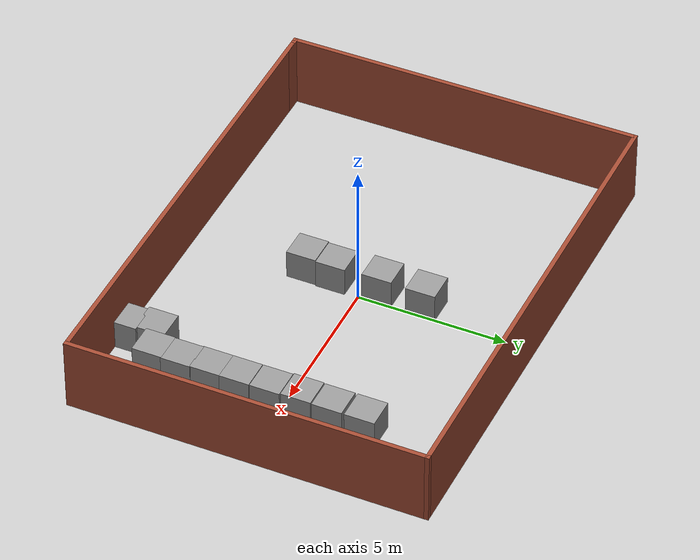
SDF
<?xml version='1.0'?>
<sdf version='1.7'>
  <model name='Untitled'>
    <link name='Wall_10'>
      <pose>-7.75 -5.925 0 0 -0 0</pose>
      <self_collide>0</self_collide>
      <enable_wind>0</enable_wind>
      <kinematic>0</kinematic>
      <visual name='Wall_10_Visual'>
        <pose>0 0 1.25 0 -0 0</pose>
        <geometry>
          <box>
            <size>0.75 0.15 2.5</size>
          </box>
        </geometry>
        <material>
          <script>
            <uri>file://media/materials/scripts/gazebo.material</uri>
            <name>Gazebo/Bricks</name>
          </script>
          <ambient>1 1 1 1</ambient>
          <shader type='pixel'/>
        </material>
        <meta>
          <layer>0</layer>
        </meta>
        <transparency>0</transparency>
        <cast_shadows>1</cast_shadows>
      </visual>
      <collision name='Wall_10_Collision'>
        <laser_retro>0</laser_retro>
        <max_contacts>10</max_contacts>
        <pose>0 0 1.25 0 -0 0</pose>
        <geometry>
          <box>
            <size>0.75 0.15 2.5</size>
          </box>
        </geometry>
        <surface>
          <friction>
            <ode>
              <mu>1</mu>
              <mu2>1</mu2>
              <fdir1>0 0 0</fdir1>
              <slip1>0</slip1>
              <slip2>0</slip2>
            </ode>
            <torsional>
              <coefficient>1</coefficient>
              <patch_radius>0</patch_radius>
              <surface_radius>0</surface_radius>
              <use_patch_radius>1</use_patch_radius>
              <ode>
                <slip>0</slip>
              </ode>
            </torsional>
          </friction>
          <bounce>
            <restitution_coefficient>0</restitution_coefficient>
            <threshold>1e+06</threshold>
          </bounce>
          <contact>
            <collide_without_contact>0</collide_without_contact>
            <collide_without_contact_bitmask>1</collide_without_contact_bitmask>
            <collide_bitmask>1</collide_bitmask>
            <ode>
              <soft_cfm>0</soft_cfm>
              <soft_erp>0.2</soft_erp>
              <kp>1e+13</kp>
              <kd>1</kd>
              <max_vel>0.01</max_vel>
              <min_depth>0</min_depth>
            </ode>
            <bullet>
              <split_impulse>1</split_impulse>
              <split_impulse_penetration_threshold>-0.01</split_impulse_penetration_threshold>
              <soft_cfm>0</soft_cfm>
              <soft_erp>0.2</soft_erp>
              <kp>1e+13</kp>
              <kd>1</kd>
            </bullet>
          </contact>
        </surface>
      </collision>
    </link>
    <link name='Wall_5'>
      <pose>0.125 -5.925 0 0 -0 0</pose>
      <self_collide>0</self_collide>
      <enable_wind>0</enable_wind>
      <kinematic>0</kinematic>
      <visual name='Wall_5_Visual'>
        <pose>0 0 1.25 0 -0 0</pose>
        <geometry>
          <box>
            <size>16 0.15 2.5</size>
          </box>
        </geometry>
        <material>
          <script>
            <uri>file://media/materials/scripts/gazebo.material</uri>
            <name>Gazebo/Bricks</name>
          </script>
          <ambient>1 1 1 1</ambient>
          <shader type='pixel'/>
        </material>
        <meta>
          <layer>0</layer>
        </meta>
        <transparency>0</transparency>
        <cast_shadows>1</cast_shadows>
      </visual>
      <collision name='Wall_5_Collision'>
        <laser_retro>0</laser_retro>
        <max_contacts>10</max_contacts>
        <pose>0 0 1.25 0 -0 0</pose>
        <geometry>
          <box>
            <size>16 0.15 2.5</size>
          </box>
        </geometry>
        <surface>
          <friction>
            <ode>
              <mu>1</mu>
              <mu2>1</mu2>
              <fdir1>0 0 0</fdir1>
              <slip1>0</slip1>
              <slip2>0</slip2>
            </ode>
            <torsional>
              <coefficient>1</coefficient>
              <patch_radius>0</patch_radius>
              <surface_radius>0</surface_radius>
              <use_patch_radius>1</use_patch_radius>
              <ode>
                <slip>0</slip>
              </ode>
            </torsional>
          </friction>
          <bounce>
            <restitution_coefficient>0</restitution_coefficient>
            <threshold>1e+06</threshold>
          </bounce>
          <contact>
            <collide_without_contact>0</collide_without_contact>
            <collide_without_contact_bitmask>1</collide_without_contact_bitmask>
            <collide_bitmask>1</collide_bitmask>
            <ode>
              <soft_cfm>0</soft_cfm>
              <soft_erp>0.2</soft_erp>
              <kp>1e+13</kp>
              <kd>1</kd>
              <max_vel>0.01</max_vel>
              <min_depth>0</min_depth>
            </ode>
            <bullet>
              <split_impulse>1</split_impulse>
              <split_impulse_penetration_threshold>-0.01</split_impulse_penetration_threshold>
              <soft_cfm>0</soft_cfm>
              <soft_erp>0.2</soft_erp>
              <kp>1e+13</kp>
              <kd>1</kd>
            </bullet>
          </contact>
        </surface>
      </collision>
    </link>
    <link name='Wall_7'>
      <pose>8.05 0 0 0 -0 1.5708</pose>
      <self_collide>0</self_collide>
      <enable_wind>0</enable_wind>
      <kinematic>0</kinematic>
      <visual name='Wall_7_Visual'>
        <pose>0 0 1.25 0 -0 0</pose>
        <geometry>
          <box>
            <size>12 0.15 2.5</size>
          </box>
        </geometry>
        <material>
          <script>
            <uri>file://media/materials/scripts/gazebo.material</uri>
            <name>Gazebo/Bricks</name>
          </script>
          <ambient>1 1 1 1</ambient>
          <shader type='pixel'/>
        </material>
        <meta>
          <layer>0</layer>
        </meta>
        <transparency>0</transparency>
        <cast_shadows>1</cast_shadows>
      </visual>
      <collision name='Wall_7_Collision'>
        <laser_retro>0</laser_retro>
        <max_contacts>10</max_contacts>
        <pose>0 0 1.25 0 -0 0</pose>
        <geometry>
          <box>
            <size>12 0.15 2.5</size>
          </box>
        </geometry>
        <surface>
          <friction>
            <ode>
              <mu>1</mu>
              <mu2>1</mu2>
              <fdir1>0 0 0</fdir1>
              <slip1>0</slip1>
              <slip2>0</slip2>
            </ode>
            <torsional>
              <coefficient>1</coefficient>
              <patch_radius>0</patch_radius>
              <surface_radius>0</surface_radius>
              <use_patch_radius>1</use_patch_radius>
              <ode>
                <slip>0</slip>
              </ode>
            </torsional>
          </friction>
          <bounce>
            <restitution_coefficient>0</restitution_coefficient>
            <threshold>1e+06</threshold>
          </bounce>
          <contact>
            <collide_without_contact>0</collide_without_contact>
            <collide_without_contact_bitmask>1</collide_without_contact_bitmask>
            <collide_bitmask>1</collide_bitmask>
            <ode>
              <soft_cfm>0</soft_cfm>
              <soft_erp>0.2</soft_erp>
              <kp>1e+13</kp>
              <kd>1</kd>
              <max_vel>0.01</max_vel>
              <min_depth>0</min_depth>
            </ode>
            <bullet>
              <split_impulse>1</split_impulse>
              <split_impulse_penetration_threshold>-0.01</split_impulse_penetration_threshold>
              <soft_cfm>0</soft_cfm>
              <soft_erp>0.2</soft_erp>
              <kp>1e+13</kp>
              <kd>1</kd>
            </bullet>
          </contact>
        </surface>
      </collision>
    </link>
    <link name='Wall_8'>
      <pose>0 5.925 0 0 -0 3.14159</pose>
      <self_collide>0</self_collide>
      <enable_wind>0</enable_wind>
      <kinematic>0</kinematic>
      <visual name='Wall_8_Visual'>
        <pose>0 0 1.25 0 -0 0</pose>
        <geometry>
          <box>
            <size>16.25 0.15 2.5</size>
          </box>
        </geometry>
        <material>
          <script>
            <uri>file://media/materials/scripts/gazebo.material</uri>
            <name>Gazebo/Bricks</name>
          </script>
          <ambient>1 1 1 1</ambient>
          <shader type='pixel'/>
        </material>
        <meta>
          <layer>0</layer>
        </meta>
        <transparency>0</transparency>
        <cast_shadows>1</cast_shadows>
      </visual>
      <collision name='Wall_8_Collision'>
        <laser_retro>0</laser_retro>
        <max_contacts>10</max_contacts>
        <pose>0 0 1.25 0 -0 0</pose>
        <geometry>
          <box>
            <size>16.25 0.15 2.5</size>
          </box>
        </geometry>
        <surface>
          <friction>
            <ode>
              <mu>1</mu>
              <mu2>1</mu2>
              <fdir1>0 0 0</fdir1>
              <slip1>0</slip1>
              <slip2>0</slip2>
            </ode>
            <torsional>
              <coefficient>1</coefficient>
              <patch_radius>0</patch_radius>
              <surface_radius>0</surface_radius>
              <use_patch_radius>1</use_patch_radius>
              <ode>
                <slip>0</slip>
              </ode>
            </torsional>
          </friction>
          <bounce>
            <restitution_coefficient>0</restitution_coefficient>
            <threshold>1e+06</threshold>
          </bounce>
          <contact>
            <collide_without_contact>0</collide_without_contact>
            <collide_without_contact_bitmask>1</collide_without_contact_bitmask>
            <collide_bitmask>1</collide_bitmask>
            <ode>
              <soft_cfm>0</soft_cfm>
              <soft_erp>0.2</soft_erp>
              <kp>1e+13</kp>
              <kd>1</kd>
              <max_vel>0.01</max_vel>
              <min_depth>0</min_depth>
            </ode>
            <bullet>
              <split_impulse>1</split_impulse>
              <split_impulse_penetration_threshold>-0.01</split_impulse_penetration_threshold>
              <soft_cfm>0</soft_cfm>
              <soft_erp>0.2</soft_erp>
              <kp>1e+13</kp>
              <kd>1</kd>
            </bullet>
          </contact>
        </surface>
      </collision>
    </link>
    <link name='Wall_9'>
      <pose>-8.05 0 0 0 0 -1.5708</pose>
      <self_collide>0</self_collide>
      <enable_wind>0</enable_wind>
      <kinematic>0</kinematic>
      <visual name='Wall_9_Visual'>
        <pose>0 0 1.25 0 -0 0</pose>
        <geometry>
          <box>
            <size>12 0.15 2.5</size>
          </box>
        </geometry>
        <material>
          <script>
            <uri>file://media/materials/scripts/gazebo.material</uri>
            <name>Gazebo/Bricks</name>
          </script>
          <ambient>1 1 1 1</ambient>
          <shader type='pixel'/>
        </material>
        <meta>
          <layer>0</layer>
        </meta>
        <transparency>0</transparency>
        <cast_shadows>1</cast_shadows>
      </visual>
      <collision name='Wall_9_Collision'>
        <laser_retro>0</laser_retro>
        <max_contacts>10</max_contacts>
        <pose>0 0 1.25 0 -0 0</pose>
        <geometry>
          <box>
            <size>12 0.15 2.5</size>
          </box>
        </geometry>
        <surface>
          <friction>
            <ode>
              <mu>1</mu>
              <mu2>1</mu2>
              <fdir1>0 0 0</fdir1>
              <slip1>0</slip1>
              <slip2>0</slip2>
            </ode>
            <torsional>
              <coefficient>1</coefficient>
              <patch_radius>0</patch_radius>
              <surface_radius>0</surface_radius>
              <use_patch_radius>1</use_patch_radius>
              <ode>
                <slip>0</slip>
              </ode>
            </torsional>
          </friction>
          <bounce>
            <restitution_coefficient>0</restitution_coefficient>
            <threshold>1e+06</threshold>
          </bounce>
          <contact>
            <collide_without_contact>0</collide_without_contact>
            <collide_without_contact_bitmask>1</collide_without_contact_bitmask>
            <collide_bitmask>1</collide_bitmask>
            <ode>
              <soft_cfm>0</soft_cfm>
              <soft_erp>0.2</soft_erp>
              <kp>1e+13</kp>
              <kd>1</kd>
              <max_vel>0.01</max_vel>
              <min_depth>0</min_depth>
            </ode>
            <bullet>
              <split_impulse>1</split_impulse>
              <split_impulse_penetration_threshold>-0.01</split_impulse_penetration_threshold>
              <soft_cfm>0</soft_cfm>
              <soft_erp>0.2</soft_erp>
              <kp>1e+13</kp>
              <kd>1</kd>
            </bullet>
          </contact>
        </surface>
      </collision>
    </link>
    <link name='link_0'>
      <inertial>
        <mass>1</mass>
        <inertia>
          <ixx>0.166667</ixx>
          <ixy>0</ixy>
          <ixz>0</ixz>
          <iyy>0.166667</iyy>
          <iyz>0</iyz>
          <izz>0.166667</izz>
        </inertia>
      </inertial>
      <pose>-0.471506 2.11148 0.5 0 -0 0</pose>
      <visual name='visual'>
        <pose>0 0 0 0 -0 0</pose>
        <geometry>
          <box>
            <size>1 1 1</size>
          </box>
        </geometry>
        <material>
          <lighting>1</lighting>
          <script>
            <uri>file://media/materials/scripts/gazebo.material</uri>
            <name>Gazebo/Grey</name>
          </script>
          <shader type='pixel'/>
        </material>
        <transparency>0</transparency>
        <cast_shadows>1</cast_shadows>
      </visual>
      <collision name='collision'>
        <laser_retro>0</laser_retro>
        <max_contacts>10</max_contacts>
        <pose>0 0 0 0 -0 0</pose>
        <geometry>
          <box>
            <size>1 1 1</size>
          </box>
        </geometry>
        <surface>
          <friction>
            <ode>
              <mu>1</mu>
              <mu2>1</mu2>
              <fdir1>0 0 0</fdir1>
              <slip1>0</slip1>
              <slip2>0</slip2>
            </ode>
            <torsional>
              <coefficient>1</coefficient>
              <patch_radius>0</patch_radius>
              <surface_radius>0</surface_radius>
              <use_patch_radius>1</use_patch_radius>
              <ode>
                <slip>0</slip>
              </ode>
            </torsional>
          </friction>
          <bounce>
            <restitution_coefficient>0</restitution_coefficient>
            <threshold>1e+06</threshold>
          </bounce>
          <contact>
            <collide_without_contact>0</collide_without_contact>
            <collide_without_contact_bitmask>1</collide_without_contact_bitmask>
            <collide_bitmask>1</collide_bitmask>
            <ode>
              <soft_cfm>0</soft_cfm>
              <soft_erp>0.2</soft_erp>
              <kp>1e+13</kp>
              <kd>1</kd>
              <max_vel>0.01</max_vel>
              <min_depth>0</min_depth>
            </ode>
            <bullet>
              <split_impulse>1</split_impulse>
              <split_impulse_penetration_threshold>-0.01</split_impulse_penetration_threshold>
              <soft_cfm>0</soft_cfm>
              <soft_erp>0.2</soft_erp>
              <kp>1e+13</kp>
              <kd>1</kd>
            </bullet>
          </contact>
        </surface>
      </collision>
    </link>
    <link name='link_1'>
      <inertial>
        <mass>1</mass>
        <inertia>
          <ixx>0.166667</ixx>
          <ixy>0</ixy>
          <ixz>0</ixz>
          <iyy>0.166667</iyy>
          <iyz>0</iyz>
          <izz>0.166667</izz>
        </inertia>
      </inertial>
      <pose>-0.450759 -0.940725 0.5 0 -0 0</pose>
      <visual name='visual'>
        <pose>0 0 0 0 -0 0</pose>
        <geometry>
          <box>
            <size>1 1 1</size>
          </box>
        </geometry>
        <material>
          <lighting>1</lighting>
          <script>
            <uri>file://media/materials/scripts/gazebo.material</uri>
            <name>Gazebo/Grey</name>
          </script>
          <shader type='pixel'/>
        </material>
        <transparency>0</transparency>
        <cast_shadows>1</cast_shadows>
      </visual>
      <collision name='collision'>
        <laser_retro>0</laser_retro>
        <max_contacts>10</max_contacts>
        <pose>0 0 0 0 -0 0</pose>
        <geometry>
          <box>
            <size>1 1 1</size>
          </box>
        </geometry>
        <surface>
          <friction>
            <ode>
              <mu>1</mu>
              <mu2>1</mu2>
              <fdir1>0 0 0</fdir1>
              <slip1>0</slip1>
              <slip2>0</slip2>
            </ode>
            <torsional>
              <coefficient>1</coefficient>
              <patch_radius>0</patch_radius>
              <surface_radius>0</surface_radius>
              <use_patch_radius>1</use_patch_radius>
              <ode>
                <slip>0</slip>
              </ode>
            </torsional>
          </friction>
          <bounce>
            <restitution_coefficient>0</restitution_coefficient>
            <threshold>1e+06</threshold>
          </bounce>
          <contact>
            <collide_without_contact>0</collide_without_contact>
            <collide_without_contact_bitmask>1</collide_without_contact_bitmask>
            <collide_bitmask>1</collide_bitmask>
            <ode>
              <soft_cfm>0</soft_cfm>
              <soft_erp>0.2</soft_erp>
              <kp>1e+13</kp>
              <kd>1</kd>
              <max_vel>0.01</max_vel>
              <min_depth>0</min_depth>
            </ode>
            <bullet>
              <split_impulse>1</split_impulse>
              <split_impulse_penetration_threshold>-0.01</split_impulse_penetration_threshold>
              <soft_cfm>0</soft_cfm>
              <soft_erp>0.2</soft_erp>
              <kp>1e+13</kp>
              <kd>1</kd>
            </bullet>
          </contact>
        </surface>
      </collision>
    </link>
    <link name='link_10'>
      <inertial>
        <mass>1</mass>
        <inertia>
          <ixx>0.166667</ixx>
          <ixy>0</ixy>
          <ixz>0</ixz>
          <iyy>0.166667</iyy>
          <iyz>0</iyz>
          <izz>0.166667</izz>
        </inertia>
      </inertial>
      <pose>5.49835 -1.38136 0.5 0 -0 0</pose>
      <visual name='visual'>
        <pose>0 0 0 0 -0 0</pose>
        <geometry>
          <box>
            <size>1 1 1</size>
          </box>
        </geometry>
        <material>
          <lighting>1</lighting>
          <script>
            <uri>file://media/materials/scripts/gazebo.material</uri>
            <name>Gazebo/Grey</name>
          </script>
          <shader type='pixel'/>
        </material>
        <transparency>0</transparency>
        <cast_shadows>1</cast_shadows>
      </visual>
      <collision name='collision'>
        <laser_retro>0</laser_retro>
        <max_contacts>10</max_contacts>
        <pose>0 0 0 0 -0 0</pose>
        <geometry>
          <box>
            <size>1 1 1</size>
          </box>
        </geometry>
        <surface>
          <friction>
            <ode>
              <mu>1</mu>
              <mu2>1</mu2>
              <fdir1>0 0 0</fdir1>
              <slip1>0</slip1>
              <slip2>0</slip2>
            </ode>
            <torsional>
              <coefficient>1</coefficient>
              <patch_radius>0</patch_radius>
              <surface_radius>0</surface_radius>
              <use_patch_radius>1</use_patch_radius>
              <ode>
                <slip>0</slip>
              </ode>
            </torsional>
          </friction>
          <bounce>
            <restitution_coefficient>0</restitution_coefficient>
            <threshold>1e+06</threshold>
          </bounce>
          <contact>
            <collide_without_contact>0</collide_without_contact>
            <collide_without_contact_bitmask>1</collide_without_contact_bitmask>
            <collide_bitmask>1</collide_bitmask>
            <ode>
              <soft_cfm>0</soft_cfm>
              <soft_erp>0.2</soft_erp>
              <kp>1e+13</kp>
              <kd>1</kd>
              <max_vel>0.01</max_vel>
              <min_depth>0</min_depth>
            </ode>
            <bullet>
              <split_impulse>1</split_impulse>
              <split_impulse_penetration_threshold>-0.01</split_impulse_penetration_threshold>
              <soft_cfm>0</soft_cfm>
              <soft_erp>0.2</soft_erp>
              <kp>1e+13</kp>
              <kd>1</kd>
            </bullet>
          </contact>
        </surface>
      </collision>
    </link>
    <link name='link_11'>
      <inertial>
        <mass>1</mass>
        <inertia>
          <ixx>0.166667</ixx>
          <ixy>0</ixy>
          <ixz>0</ixz>
          <iyy>0.166667</iyy>
          <iyz>0</iyz>
          <izz>0.166667</izz>
        </inertia>
      </inertial>
      <pose>5.49835 -0.36397 0.5 0 -0 0</pose>
      <visual name='visual'>
        <pose>0 0 0 0 -0 0</pose>
        <geometry>
          <box>
            <size>1 1 1</size>
          </box>
        </geometry>
        <material>
          <lighting>1</lighting>
          <script>
            <uri>file://media/materials/scripts/gazebo.material</uri>
            <name>Gazebo/Grey</name>
          </script>
          <shader type='pixel'/>
        </material>
        <transparency>0</transparency>
        <cast_shadows>1</cast_shadows>
      </visual>
      <collision name='collision'>
        <laser_retro>0</laser_retro>
        <max_contacts>10</max_contacts>
        <pose>0 0 0 0 -0 0</pose>
        <geometry>
          <box>
            <size>1 1 1</size>
          </box>
        </geometry>
        <surface>
          <friction>
            <ode>
              <mu>1</mu>
              <mu2>1</mu2>
              <fdir1>0 0 0</fdir1>
              <slip1>0</slip1>
              <slip2>0</slip2>
            </ode>
            <torsional>
              <coefficient>1</coefficient>
              <patch_radius>0</patch_radius>
              <surface_radius>0</surface_radius>
              <use_patch_radius>1</use_patch_radius>
              <ode>
                <slip>0</slip>
              </ode>
            </torsional>
          </friction>
          <bounce>
            <restitution_coefficient>0</restitution_coefficient>
            <threshold>1e+06</threshold>
          </bounce>
          <contact>
            <collide_without_contact>0</collide_without_contact>
            <collide_without_contact_bitmask>1</collide_without_contact_bitmask>
            <collide_bitmask>1</collide_bitmask>
            <ode>
              <soft_cfm>0</soft_cfm>
              <soft_erp>0.2</soft_erp>
              <kp>1e+13</kp>
              <kd>1</kd>
              <max_vel>0.01</max_vel>
              <min_depth>0</min_depth>
            </ode>
            <bullet>
              <split_impulse>1</split_impulse>
              <split_impulse_penetration_threshold>-0.01</split_impulse_penetration_threshold>
              <soft_cfm>0</soft_cfm>
              <soft_erp>0.2</soft_erp>
              <kp>1e+13</kp>
              <kd>1</kd>
            </bullet>
          </contact>
        </surface>
      </collision>
    </link>
    <link name='link_12'>
      <inertial>
        <mass>1</mass>
        <inertia>
          <ixx>0.166667</ixx>
          <ixy>0</ixy>
          <ixz>0</ixz>
          <iyy>0.166667</iyy>
          <iyz>0</iyz>
          <izz>0.166667</izz>
        </inertia>
      </inertial>
      <pose>5.45681 0.653441 0.5 0 -0 0</pose>
      <visual name='visual'>
        <pose>0 0 0 0 -0 0</pose>
        <geometry>
          <box>
            <size>1 1 1</size>
          </box>
        </geometry>
        <material>
          <lighting>1</lighting>
          <script>
            <uri>file://media/materials/scripts/gazebo.material</uri>
            <name>Gazebo/Grey</name>
          </script>
          <shader type='pixel'/>
        </material>
        <transparency>0</transparency>
        <cast_shadows>1</cast_shadows>
      </visual>
      <collision name='collision'>
        <laser_retro>0</laser_retro>
        <max_contacts>10</max_contacts>
        <pose>0 0 0 0 -0 0</pose>
        <geometry>
          <box>
            <size>1 1 1</size>
          </box>
        </geometry>
        <surface>
          <friction>
            <ode>
              <mu>1</mu>
              <mu2>1</mu2>
              <fdir1>0 0 0</fdir1>
              <slip1>0</slip1>
              <slip2>0</slip2>
            </ode>
            <torsional>
              <coefficient>1</coefficient>
              <patch_radius>0</patch_radius>
              <surface_radius>0</surface_radius>
              <use_patch_radius>1</use_patch_radius>
              <ode>
                <slip>0</slip>
              </ode>
            </torsional>
          </friction>
          <bounce>
            <restitution_coefficient>0</restitution_coefficient>
            <threshold>1e+06</threshold>
          </bounce>
          <contact>
            <collide_without_contact>0</collide_without_contact>
            <collide_without_contact_bitmask>1</collide_without_contact_bitmask>
            <collide_bitmask>1</collide_bitmask>
            <ode>
              <soft_cfm>0</soft_cfm>
              <soft_erp>0.2</soft_erp>
              <kp>1e+13</kp>
              <kd>1</kd>
              <max_vel>0.01</max_vel>
              <min_depth>0</min_depth>
            </ode>
            <bullet>
              <split_impulse>1</split_impulse>
              <split_impulse_penetration_threshold>-0.01</split_impulse_penetration_threshold>
              <soft_cfm>0</soft_cfm>
              <soft_erp>0.2</soft_erp>
              <kp>1e+13</kp>
              <kd>1</kd>
            </bullet>
          </contact>
        </surface>
      </collision>
    </link>
    <link name='link_13'>
      <inertial>
        <mass>1</mass>
        <inertia>
          <ixx>0.166667</ixx>
          <ixy>0</ixy>
          <ixz>0</ixz>
          <iyy>0.166667</iyy>
          <iyz>0</iyz>
          <izz>0.166667</izz>
        </inertia>
      </inertial>
      <pose>5.47757 1.6916 0.5 0 -0 0</pose>
      <visual name='visual'>
        <pose>0 0 0 0 -0 0</pose>
        <geometry>
          <box>
            <size>1 1 1</size>
          </box>
        </geometry>
        <material>
          <lighting>1</lighting>
          <script>
            <uri>file://media/materials/scripts/gazebo.material</uri>
            <name>Gazebo/Grey</name>
          </script>
          <shader type='pixel'/>
        </material>
        <transparency>0</transparency>
        <cast_shadows>1</cast_shadows>
      </visual>
      <collision name='collision'>
        <laser_retro>0</laser_retro>
        <max_contacts>10</max_contacts>
        <pose>0 0 0 0 -0 0</pose>
        <geometry>
          <box>
            <size>1 1 1</size>
          </box>
        </geometry>
        <surface>
          <friction>
            <ode>
              <mu>1</mu>
              <mu2>1</mu2>
              <fdir1>0 0 0</fdir1>
              <slip1>0</slip1>
              <slip2>0</slip2>
            </ode>
            <torsional>
              <coefficient>1</coefficient>
              <patch_radius>0</patch_radius>
              <surface_radius>0</surface_radius>
              <use_patch_radius>1</use_patch_radius>
              <ode>
                <slip>0</slip>
              </ode>
            </torsional>
          </friction>
          <bounce>
            <restitution_coefficient>0</restitution_coefficient>
            <threshold>1e+06</threshold>
          </bounce>
          <contact>
            <collide_without_contact>0</collide_without_contact>
            <collide_without_contact_bitmask>1</collide_without_contact_bitmask>
            <collide_bitmask>1</collide_bitmask>
            <ode>
              <soft_cfm>0</soft_cfm>
              <soft_erp>0.2</soft_erp>
              <kp>1e+13</kp>
              <kd>1</kd>
              <max_vel>0.01</max_vel>
              <min_depth>0</min_depth>
            </ode>
            <bullet>
              <split_impulse>1</split_impulse>
              <split_impulse_penetration_threshold>-0.01</split_impulse_penetration_threshold>
              <soft_cfm>0</soft_cfm>
              <soft_erp>0.2</soft_erp>
              <kp>1e+13</kp>
              <kd>1</kd>
            </bullet>
          </contact>
        </surface>
      </collision>
    </link>
    <link name='link_14'>
      <inertial>
        <mass>1</mass>
        <inertia>
          <ixx>0.166667</ixx>
          <ixy>0</ixy>
          <ixz>0</ixz>
          <iyy>0.166667</iyy>
          <iyz>0</iyz>
          <izz>0.166667</izz>
        </inertia>
      </inertial>
      <pose>5.47757 2.77129 0.5 0 -0 0</pose>
      <visual name='visual'>
        <pose>0 0 0 0 -0 0</pose>
        <geometry>
          <box>
            <size>1 1 1</size>
          </box>
        </geometry>
        <material>
          <lighting>1</lighting>
          <script>
            <uri>file://media/materials/scripts/gazebo.material</uri>
            <name>Gazebo/Grey</name>
          </script>
          <shader type='pixel'/>
        </material>
        <transparency>0</transparency>
        <cast_shadows>1</cast_shadows>
      </visual>
      <collision name='collision'>
        <laser_retro>0</laser_retro>
        <max_contacts>10</max_contacts>
        <pose>0 0 0 0 -0 0</pose>
        <geometry>
          <box>
            <size>1 1 1</size>
          </box>
        </geometry>
        <surface>
          <friction>
            <ode>
              <mu>1</mu>
              <mu2>1</mu2>
              <fdir1>0 0 0</fdir1>
              <slip1>0</slip1>
              <slip2>0</slip2>
            </ode>
            <torsional>
              <coefficient>1</coefficient>
              <patch_radius>0</patch_radius>
              <surface_radius>0</surface_radius>
              <use_patch_radius>1</use_patch_radius>
              <ode>
                <slip>0</slip>
              </ode>
            </torsional>
          </friction>
          <bounce>
            <restitution_coefficient>0</restitution_coefficient>
            <threshold>1e+06</threshold>
          </bounce>
          <contact>
            <collide_without_contact>0</collide_without_contact>
            <collide_without_contact_bitmask>1</collide_without_contact_bitmask>
            <collide_bitmask>1</collide_bitmask>
            <ode>
              <soft_cfm>0</soft_cfm>
              <soft_erp>0.2</soft_erp>
              <kp>1e+13</kp>
              <kd>1</kd>
              <max_vel>0.01</max_vel>
              <min_depth>0</min_depth>
            </ode>
            <bullet>
              <split_impulse>1</split_impulse>
              <split_impulse_penetration_threshold>-0.01</split_impulse_penetration_threshold>
              <soft_cfm>0</soft_cfm>
              <soft_erp>0.2</soft_erp>
              <kp>1e+13</kp>
              <kd>1</kd>
            </bullet>
          </contact>
        </surface>
      </collision>
    </link>
    <link name='link_16'>
      <inertial>
        <mass>366.519</mass>
        <inertia>
          <ixx>36.6519</ixx>
          <ixy>0</ixy>
          <ixz>0</ixz>
          <iyy>36.6519</iyy>
          <iyz>0</iyz>
          <izz>36.6519</izz>
        </inertia>
        <pose>0 0 0 0 -0 0</pose>
      </inertial>
      <pose>7.05701 -0.510198 0.5 0 -0 0</pose>
      <gravity>1</gravity>
      <self_collide>0</self_collide>
      <kinematic>0</kinematic>
      <enable_wind>0</enable_wind>
      <visual name='visual'>
        <pose>0 0 0 0 -0 0</pose>
        <geometry>
          <sphere>
            <radius>0.5</radius>
          </sphere>
        </geometry>
        <material>
          <lighting>1</lighting>
          <script>
            <uri>file://media/materials/scripts/gazebo.material</uri>
            <name>Gazebo/Grey</name>
          </script>
          <shader type='pixel'>
            <normal_map>__default__</normal_map>
          </shader>
        </material>
        <transparency>0</transparency>
        <cast_shadows>1</cast_shadows>
      </visual>
      <collision name='collision'>
        <laser_retro>0</laser_retro>
        <max_contacts>10</max_contacts>
        <pose>0 0 0 0 -0 0</pose>
        <geometry>
          <sphere>
            <radius>0.5</radius>
          </sphere>
        </geometry>
        <surface>
          <friction>
            <ode>
              <mu>1</mu>
              <mu2>1</mu2>
              <fdir1>0 0 0</fdir1>
              <slip1>0</slip1>
              <slip2>0</slip2>
            </ode>
            <torsional>
              <coefficient>1</coefficient>
              <patch_radius>0</patch_radius>
              <surface_radius>0</surface_radius>
              <use_patch_radius>1</use_patch_radius>
              <ode>
                <slip>0</slip>
              </ode>
            </torsional>
          </friction>
          <bounce>
            <restitution_coefficient>0</restitution_coefficient>
            <threshold>1e+06</threshold>
          </bounce>
          <contact>
            <collide_without_contact>0</collide_without_contact>
            <collide_without_contact_bitmask>1</collide_without_contact_bitmask>
            <collide_bitmask>1</collide_bitmask>
            <ode>
              <soft_cfm>0</soft_cfm>
              <soft_erp>0.2</soft_erp>
              <kp>1e+13</kp>
              <kd>1</kd>
              <max_vel>0.01</max_vel>
              <min_depth>0</min_depth>
            </ode>
            <bullet>
              <split_impulse>1</split_impulse>
              <split_impulse_penetration_threshold>-0.01</split_impulse_penetration_threshold>
              <soft_cfm>0</soft_cfm>
              <soft_erp>0.2</soft_erp>
              <kp>1e+13</kp>
              <kd>1</kd>
            </bullet>
          </contact>
        </surface>
      </collision>
    </link>
    <link name='link_17'>
      <inertial>
        <mass>1</mass>
        <inertia>
          <ixx>0.166667</ixx>
          <ixy>0</ixy>
          <ixz>0</ixz>
          <iyy>0.166667</iyy>
          <iyz>0</iyz>
          <izz>0.166667</izz>
        </inertia>
      </inertial>
      <pose>4.57979 -4.69036 0.5 0 -0 0</pose>
      <visual name='visual'>
        <pose>0 0 0 0 -0 0</pose>
        <geometry>
          <box>
            <size>1 1 1</size>
          </box>
        </geometry>
        <material>
          <lighting>1</lighting>
          <script>
            <uri>file://media/materials/scripts/gazebo.material</uri>
            <name>Gazebo/Grey</name>
          </script>
          <shader type='pixel'/>
        </material>
        <transparency>0</transparency>
        <cast_shadows>1</cast_shadows>
      </visual>
      <collision name='collision'>
        <laser_retro>0</laser_retro>
        <max_contacts>10</max_contacts>
        <pose>0 0 0 0 -0 0</pose>
        <geometry>
          <box>
            <size>1 1 1</size>
          </box>
        </geometry>
        <surface>
          <friction>
            <ode>
              <mu>1</mu>
              <mu2>1</mu2>
              <fdir1>0 0 0</fdir1>
              <slip1>0</slip1>
              <slip2>0</slip2>
            </ode>
            <torsional>
              <coefficient>1</coefficient>
              <patch_radius>0</patch_radius>
              <surface_radius>0</surface_radius>
              <use_patch_radius>1</use_patch_radius>
              <ode>
                <slip>0</slip>
              </ode>
            </torsional>
          </friction>
          <bounce>
            <restitution_coefficient>0</restitution_coefficient>
            <threshold>1e+06</threshold>
          </bounce>
          <contact>
            <collide_without_contact>0</collide_without_contact>
            <collide_without_contact_bitmask>1</collide_without_contact_bitmask>
            <collide_bitmask>1</collide_bitmask>
            <ode>
              <soft_cfm>0</soft_cfm>
              <soft_erp>0.2</soft_erp>
              <kp>1e+13</kp>
              <kd>1</kd>
              <max_vel>0.01</max_vel>
              <min_depth>0</min_depth>
            </ode>
            <bullet>
              <split_impulse>1</split_impulse>
              <split_impulse_penetration_threshold>-0.01</split_impulse_penetration_threshold>
              <soft_cfm>0</soft_cfm>
              <soft_erp>0.2</soft_erp>
              <kp>1e+13</kp>
              <kd>1</kd>
            </bullet>
          </contact>
        </surface>
      </collision>
    </link>
    <link name='link_18'>
      <inertial>
        <mass>1</mass>
        <inertia>
          <ixx>0.166667</ixx>
          <ixy>0</ixy>
          <ixz>0</ixz>
          <iyy>0.166667</iyy>
          <iyz>0</iyz>
          <izz>0.166667</izz>
        </inertia>
      </inertial>
      <pose>4.67559 -5.60952 0.5 0 -0 0</pose>
      <visual name='visual'>
        <pose>0 0 0 0 -0 0</pose>
        <geometry>
          <box>
            <size>1 1 1</size>
          </box>
        </geometry>
        <material>
          <lighting>1</lighting>
          <script>
            <uri>file://media/materials/scripts/gazebo.material</uri>
            <name>Gazebo/Grey</name>
          </script>
          <shader type='pixel'/>
        </material>
        <transparency>0</transparency>
        <cast_shadows>1</cast_shadows>
      </visual>
      <collision name='collision'>
        <laser_retro>0</laser_retro>
        <max_contacts>10</max_contacts>
        <pose>0 0 0 0 -0 0</pose>
        <geometry>
          <box>
            <size>1 1 1</size>
          </box>
        </geometry>
        <surface>
          <friction>
            <ode>
              <mu>1</mu>
              <mu2>1</mu2>
              <fdir1>0 0 0</fdir1>
              <slip1>0</slip1>
              <slip2>0</slip2>
            </ode>
            <torsional>
              <coefficient>1</coefficient>
              <patch_radius>0</patch_radius>
              <surface_radius>0</surface_radius>
              <use_patch_radius>1</use_patch_radius>
              <ode>
                <slip>0</slip>
              </ode>
            </torsional>
          </friction>
          <bounce>
            <restitution_coefficient>0</restitution_coefficient>
            <threshold>1e+06</threshold>
          </bounce>
          <contact>
            <collide_without_contact>0</collide_without_contact>
            <collide_without_contact_bitmask>1</collide_without_contact_bitmask>
            <collide_bitmask>1</collide_bitmask>
            <ode>
              <soft_cfm>0</soft_cfm>
              <soft_erp>0.2</soft_erp>
              <kp>1e+13</kp>
              <kd>1</kd>
              <max_vel>0.01</max_vel>
              <min_depth>0</min_depth>
            </ode>
            <bullet>
              <split_impulse>1</split_impulse>
              <split_impulse_penetration_threshold>-0.01</split_impulse_penetration_threshold>
              <soft_cfm>0</soft_cfm>
              <soft_erp>0.2</soft_erp>
              <kp>1e+13</kp>
              <kd>1</kd>
            </bullet>
          </contact>
        </surface>
      </collision>
    </link>
    <link name='link_3'>
      <inertial>
        <mass>1</mass>
        <inertia>
          <ixx>0.166667</ixx>
          <ixy>0</ixy>
          <ixz>0</ixz>
          <iyy>0.166667</iyy>
          <iyz>0</iyz>
          <izz>0.166667</izz>
        </inertia>
      </inertial>
      <pose>-0.493043 -1.96033 0.5 0 -0 0</pose>
      <visual name='visual'>
        <pose>0 0 0 0 -0 0</pose>
        <geometry>
          <box>
            <size>1 1 1</size>
          </box>
        </geometry>
        <material>
          <lighting>1</lighting>
          <script>
            <uri>file://media/materials/scripts/gazebo.material</uri>
            <name>Gazebo/Grey</name>
          </script>
          <shader type='pixel'/>
        </material>
        <transparency>0</transparency>
        <cast_shadows>1</cast_shadows>
      </visual>
      <collision name='collision'>
        <laser_retro>0</laser_retro>
        <max_contacts>10</max_contacts>
        <pose>0 0 0 0 -0 0</pose>
        <geometry>
          <box>
            <size>1 1 1</size>
          </box>
        </geometry>
        <surface>
          <friction>
            <ode>
              <mu>1</mu>
              <mu2>1</mu2>
              <fdir1>0 0 0</fdir1>
              <slip1>0</slip1>
              <slip2>0</slip2>
            </ode>
            <torsional>
              <coefficient>1</coefficient>
              <patch_radius>0</patch_radius>
              <surface_radius>0</surface_radius>
              <use_patch_radius>1</use_patch_radius>
              <ode>
                <slip>0</slip>
              </ode>
            </torsional>
          </friction>
          <bounce>
            <restitution_coefficient>0</restitution_coefficient>
            <threshold>1e+06</threshold>
          </bounce>
          <contact>
            <collide_without_contact>0</collide_without_contact>
            <collide_without_contact_bitmask>1</collide_without_contact_bitmask>
            <collide_bitmask>1</collide_bitmask>
            <ode>
              <soft_cfm>0</soft_cfm>
              <soft_erp>0.2</soft_erp>
              <kp>1e+13</kp>
              <kd>1</kd>
              <max_vel>0.01</max_vel>
              <min_depth>0</min_depth>
            </ode>
            <bullet>
              <split_impulse>1</split_impulse>
              <split_impulse_penetration_threshold>-0.01</split_impulse_penetration_threshold>
              <soft_cfm>0</soft_cfm>
              <soft_erp>0.2</soft_erp>
              <kp>1e+13</kp>
              <kd>1</kd>
            </bullet>
          </contact>
        </surface>
      </collision>
    </link>
    <link name='link_4'>
      <inertial>
        <mass>1</mass>
        <inertia>
          <ixx>0.166667</ixx>
          <ixy>0</ixy>
          <ixz>0</ixz>
          <iyy>0.166667</iyy>
          <iyz>0</iyz>
          <izz>0.166667</izz>
        </inertia>
      </inertial>
      <pose>-0.513823 0.614318 0.5 0 -0 0</pose>
      <visual name='visual'>
        <pose>0 0 0 0 -0 0</pose>
        <geometry>
          <box>
            <size>1 1 1</size>
          </box>
        </geometry>
        <material>
          <lighting>1</lighting>
          <script>
            <uri>file://media/materials/scripts/gazebo.material</uri>
            <name>Gazebo/Grey</name>
          </script>
          <shader type='pixel'/>
        </material>
        <transparency>0</transparency>
        <cast_shadows>1</cast_shadows>
      </visual>
      <collision name='collision'>
        <laser_retro>0</laser_retro>
        <max_contacts>10</max_contacts>
        <pose>0 0 0 0 -0 0</pose>
        <geometry>
          <box>
            <size>1 1 1</size>
          </box>
        </geometry>
        <surface>
          <friction>
            <ode>
              <mu>1</mu>
              <mu2>1</mu2>
              <fdir1>0 0 0</fdir1>
              <slip1>0</slip1>
              <slip2>0</slip2>
            </ode>
            <torsional>
              <coefficient>1</coefficient>
              <patch_radius>0</patch_radius>
              <surface_radius>0</surface_radius>
              <use_patch_radius>1</use_patch_radius>
              <ode>
                <slip>0</slip>
              </ode>
            </torsional>
          </friction>
          <bounce>
            <restitution_coefficient>0</restitution_coefficient>
            <threshold>1e+06</threshold>
          </bounce>
          <contact>
            <collide_without_contact>0</collide_without_contact>
            <collide_without_contact_bitmask>1</collide_without_contact_bitmask>
            <collide_bitmask>1</collide_bitmask>
            <ode>
              <soft_cfm>0</soft_cfm>
              <soft_erp>0.2</soft_erp>
              <kp>1e+13</kp>
              <kd>1</kd>
              <max_vel>0.01</max_vel>
              <min_depth>0</min_depth>
            </ode>
            <bullet>
              <split_impulse>1</split_impulse>
              <split_impulse_penetration_threshold>-0.01</split_impulse_penetration_threshold>
              <soft_cfm>0</soft_cfm>
              <soft_erp>0.2</soft_erp>
              <kp>1e+13</kp>
              <kd>1</kd>
            </bullet>
          </contact>
        </surface>
      </collision>
    </link>
    <link name='link_7'>
      <inertial>
        <mass>1</mass>
        <inertia>
          <ixx>0.166667</ixx>
          <ixy>0</ixy>
          <ixz>0</ixz>
          <iyy>0.166667</iyy>
          <iyz>0</iyz>
          <izz>0.166667</izz>
        </inertia>
      </inertial>
      <pose>5.49834 -4.32977 0.5 0 -0 0</pose>
      <visual name='visual'>
        <pose>0 0 0 0 -0 0</pose>
        <geometry>
          <box>
            <size>1 1 1</size>
          </box>
        </geometry>
        <material>
          <lighting>1</lighting>
          <script>
            <uri>file://media/materials/scripts/gazebo.material</uri>
            <name>Gazebo/Grey</name>
          </script>
          <shader type='pixel'/>
        </material>
        <transparency>0</transparency>
        <cast_shadows>1</cast_shadows>
      </visual>
      <collision name='collision'>
        <laser_retro>0</laser_retro>
        <max_contacts>10</max_contacts>
        <pose>0 0 0 0 -0 0</pose>
        <geometry>
          <box>
            <size>1 1 1</size>
          </box>
        </geometry>
        <surface>
          <friction>
            <ode>
              <mu>1</mu>
              <mu2>1</mu2>
              <fdir1>0 0 0</fdir1>
              <slip1>0</slip1>
              <slip2>0</slip2>
            </ode>
            <torsional>
              <coefficient>1</coefficient>
              <patch_radius>0</patch_radius>
              <surface_radius>0</surface_radius>
              <use_patch_radius>1</use_patch_radius>
              <ode>
                <slip>0</slip>
              </ode>
            </torsional>
          </friction>
          <bounce>
            <restitution_coefficient>0</restitution_coefficient>
            <threshold>1e+06</threshold>
          </bounce>
          <contact>
            <collide_without_contact>0</collide_without_contact>
            <collide_without_contact_bitmask>1</collide_without_contact_bitmask>
            <collide_bitmask>1</collide_bitmask>
            <ode>
              <soft_cfm>0</soft_cfm>
              <soft_erp>0.2</soft_erp>
              <kp>1e+13</kp>
              <kd>1</kd>
              <max_vel>0.01</max_vel>
              <min_depth>0</min_depth>
            </ode>
            <bullet>
              <split_impulse>1</split_impulse>
              <split_impulse_penetration_threshold>-0.01</split_impulse_penetration_threshold>
              <soft_cfm>0</soft_cfm>
              <soft_erp>0.2</soft_erp>
              <kp>1e+13</kp>
              <kd>1</kd>
            </bullet>
          </contact>
        </surface>
      </collision>
    </link>
    <link name='link_8'>
      <inertial>
        <mass>1</mass>
        <inertia>
          <ixx>0.166667</ixx>
          <ixy>0</ixy>
          <ixz>0</ixz>
          <iyy>0.166667</iyy>
          <iyz>0</iyz>
          <izz>0.166667</izz>
        </inertia>
      </inertial>
      <pose>5.51911 -3.35388 0.5 0 -0 0</pose>
      <visual name='visual'>
        <pose>0 0 0 0 -0 0</pose>
        <geometry>
          <box>
            <size>1 1 1</size>
          </box>
        </geometry>
        <material>
          <lighting>1</lighting>
          <script>
            <uri>file://media/materials/scripts/gazebo.material</uri>
            <name>Gazebo/Grey</name>
          </script>
          <shader type='pixel'/>
        </material>
        <transparency>0</transparency>
        <cast_shadows>1</cast_shadows>
      </visual>
      <collision name='collision'>
        <laser_retro>0</laser_retro>
        <max_contacts>10</max_contacts>
        <pose>0 0 0 0 -0 0</pose>
        <geometry>
          <box>
            <size>1 1 1</size>
          </box>
        </geometry>
        <surface>
          <friction>
            <ode>
              <mu>1</mu>
              <mu2>1</mu2>
              <fdir1>0 0 0</fdir1>
              <slip1>0</slip1>
              <slip2>0</slip2>
            </ode>
            <torsional>
              <coefficient>1</coefficient>
              <patch_radius>0</patch_radius>
              <surface_radius>0</surface_radius>
              <use_patch_radius>1</use_patch_radius>
              <ode>
                <slip>0</slip>
              </ode>
            </torsional>
          </friction>
          <bounce>
            <restitution_coefficient>0</restitution_coefficient>
            <threshold>1e+06</threshold>
          </bounce>
          <contact>
            <collide_without_contact>0</collide_without_contact>
            <collide_without_contact_bitmask>1</collide_without_contact_bitmask>
            <collide_bitmask>1</collide_bitmask>
            <ode>
              <soft_cfm>0</soft_cfm>
              <soft_erp>0.2</soft_erp>
              <kp>1e+13</kp>
              <kd>1</kd>
              <max_vel>0.01</max_vel>
              <min_depth>0</min_depth>
            </ode>
            <bullet>
              <split_impulse>1</split_impulse>
              <split_impulse_penetration_threshold>-0.01</split_impulse_penetration_threshold>
              <soft_cfm>0</soft_cfm>
              <soft_erp>0.2</soft_erp>
              <kp>1e+13</kp>
              <kd>1</kd>
            </bullet>
          </contact>
        </surface>
      </collision>
    </link>
    <link name='link_9'>
      <inertial>
        <mass>1</mass>
        <inertia>
          <ixx>0.166667</ixx>
          <ixy>0</ixy>
          <ixz>0</ixz>
          <iyy>0.166667</iyy>
          <iyz>0</iyz>
          <izz>0.166667</izz>
        </inertia>
      </inertial>
      <pose>5.49834 -2.37801 0.5 0 -0 0</pose>
      <visual name='visual'>
        <pose>0 0 0 0 -0 0</pose>
        <geometry>
          <box>
            <size>1 1 1</size>
          </box>
        </geometry>
        <material>
          <lighting>1</lighting>
          <script>
            <uri>file://media/materials/scripts/gazebo.material</uri>
            <name>Gazebo/Grey</name>
          </script>
          <shader type='pixel'/>
        </material>
        <transparency>0</transparency>
        <cast_shadows>1</cast_shadows>
      </visual>
      <collision name='collision'>
        <laser_retro>0</laser_retro>
        <max_contacts>10</max_contacts>
        <pose>0 0 0 0 -0 0</pose>
        <geometry>
          <box>
            <size>1 1 1</size>
          </box>
        </geometry>
        <surface>
          <friction>
            <ode>
              <mu>1</mu>
              <mu2>1</mu2>
              <fdir1>0 0 0</fdir1>
              <slip1>0</slip1>
              <slip2>0</slip2>
            </ode>
            <torsional>
              <coefficient>1</coefficient>
              <patch_radius>0</patch_radius>
              <surface_radius>0</surface_radius>
              <use_patch_radius>1</use_patch_radius>
              <ode>
                <slip>0</slip>
              </ode>
            </torsional>
          </friction>
          <bounce>
            <restitution_coefficient>0</restitution_coefficient>
            <threshold>1e+06</threshold>
          </bounce>
          <contact>
            <collide_without_contact>0</collide_without_contact>
            <collide_without_contact_bitmask>1</collide_without_contact_bitmask>
            <collide_bitmask>1</collide_bitmask>
            <ode>
              <soft_cfm>0</soft_cfm>
              <soft_erp>0.2</soft_erp>
              <kp>1e+13</kp>
              <kd>1</kd>
              <max_vel>0.01</max_vel>
              <min_depth>0</min_depth>
            </ode>
            <bullet>
              <split_impulse>1</split_impulse>
              <split_impulse_penetration_threshold>-0.01</split_impulse_penetration_threshold>
              <soft_cfm>0</soft_cfm>
              <soft_erp>0.2</soft_erp>
              <kp>1e+13</kp>
              <kd>1</kd>
            </bullet>
          </contact>
        </surface>
      </collision>
    </link>
    <static>1</static>
    <allow_auto_disable>1</allow_auto_disable>
  </model>
</sdf>
